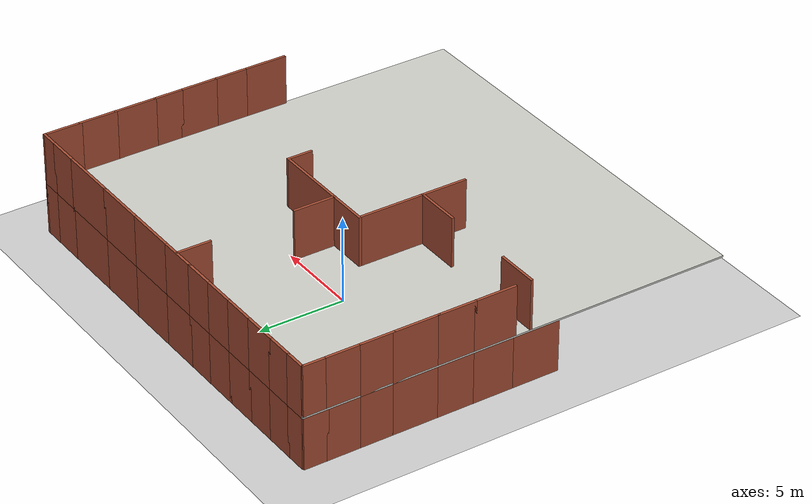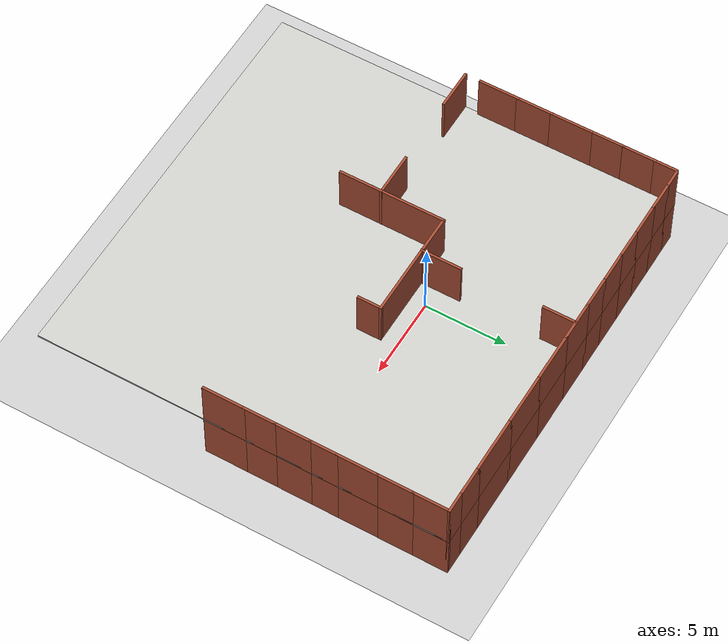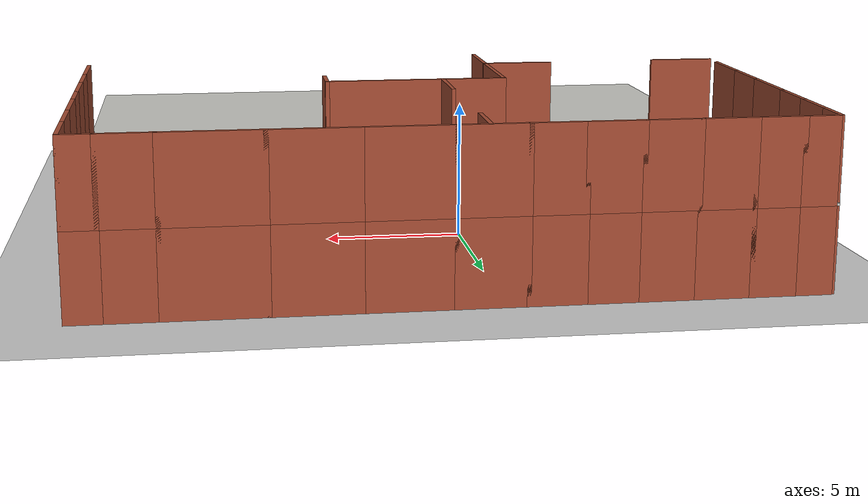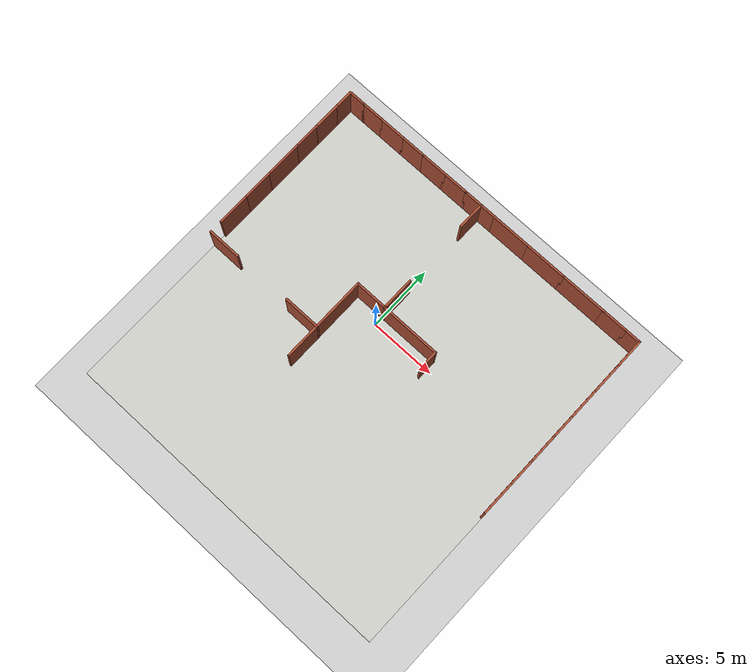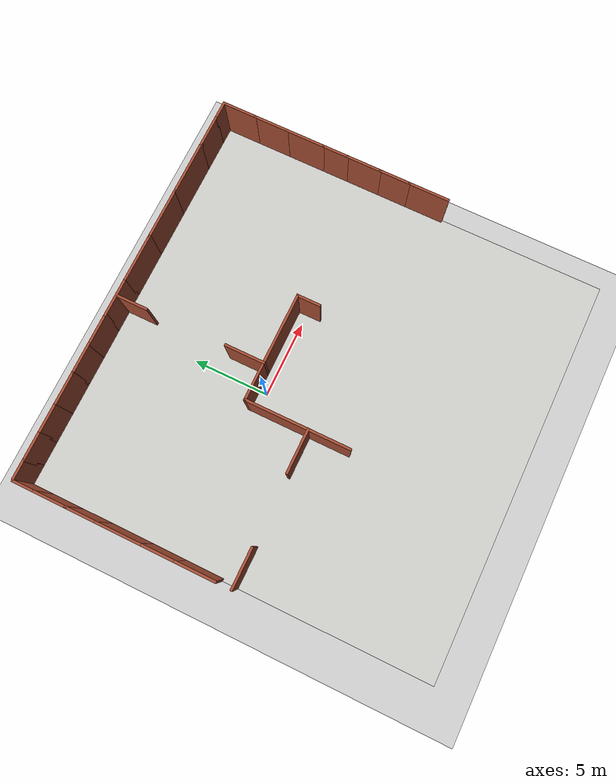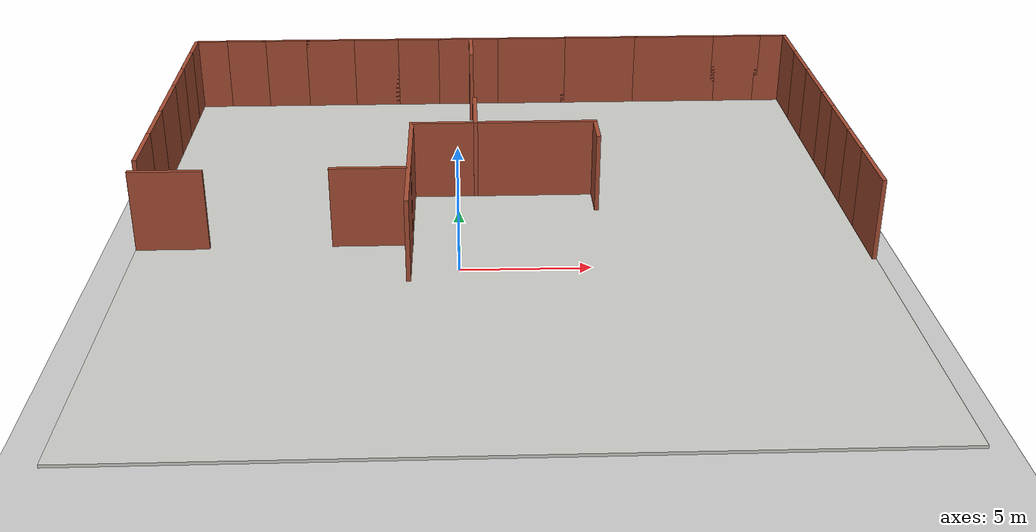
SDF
<sdf version="1.6">
 <world name="default">
  <model name="ground_plane">
   <static>1</static>
   <link name="link">
    <collision name="collision">
     <geometry><plane><normal>0 0 1</normal><size>100 100</size></plane></geometry>
     <surface><friction><ode><mu>100</mu><mu2>50</mu2></ode></friction></surface>
    </collision>
    <visual name="visual">
     <cast_shadows>0</cast_shadows>
     <geometry><plane><normal>0 0 1</normal><size>100 100</size></plane></geometry>
     <material>
      <script><uri>file://media/materials/scripts/gazebo.material</uri><name>Gazebo/Grey</name></script>
     </material>
    </visual>
   </link>
  </model>
  <model name="bigMaze1">
   <pose>1.50484 -3.1802 0 0 -0 0</pose>
   <link name="Floor_1">
    <collision name="Floor_1_Collision">
     <geometry><box><size>24.95 25.0775 0.1</size></box></geometry>
     <pose>0 0 0.05 0 -0 0</pose>
    </collision>
    <visual name="Floor_1_Visual">
     <pose>0 0 0.05 0 -0 0</pose>
     <geometry><box><size>24.95 25.0775 0.1</size></box></geometry>
     <material>
      <script><uri>file://media/materials/scripts/gazebo.material</uri><name>Gazebo/CeilingTiled</name></script>
      <ambient>0.203922 0.396078 0.643137 1</ambient>
     </material>
     <meta><layer>1</layer></meta>
    </visual>
    <pose>-0 0 3 0 -0 0</pose>
   </link>
   <link name="Wall_10">
    <collision name="Wall_10_Collision">
     <geometry><box><size>2 0.15 3</size></box></geometry>
     <pose>0 0 1.5 0 -0 0</pose>
    </collision>
    <visual name="Wall_10_Visual">
     <pose>0 0 1.5 0 -0 0</pose>
     <geometry><box><size>2 0.15 3</size></box></geometry>
     <material>
      <script><uri>file://media/materials/scripts/gazebo.material</uri><name>Gazebo/Bricks</name></script>
      <ambient>1 1 1 1</ambient>
     </material>
     <meta><layer>0</layer></meta>
    </visual>
    <pose>-3.125 12.4638 0 0 -0 0</pose>
   </link>
   <link name="Wall_11">
    <collision name="Wall_11_Collision">
     <geometry><box><size>2.5 0.15 3</size></box></geometry>
     <pose>0 0 1.5 0 -0 0</pose>
    </collision>
    <visual name="Wall_11_Visual">
     <pose>0 0 1.5 0 -0 0</pose>
     <geometry><box><size>2.5 0.15 3</size></box></geometry>
     <material>
      <script><uri>file://media/materials/scripts/gazebo.material</uri><name>Gazebo/Bricks</name></script>
      <ambient>1 1 1 1</ambient>
     </material>
     <meta><layer>0</layer></meta>
    </visual>
    <pose>-1.025 12.4638 0 0 -0 0</pose>
   </link>
   <link name="Wall_12">
    <collision name="Wall_12_Collision">
     <geometry><box><size>3 0.15 3</size></box></geometry>
     <pose>0 0 1.5 0 -0 0</pose>
    </collision>
    <visual name="Wall_12_Visual">
     <pose>0 0 1.5 0 -0 0</pose>
     <geometry><box><size>3 0.15 3</size></box></geometry>
     <material>
      <script><uri>file://media/materials/scripts/gazebo.material</uri><name>Gazebo/Bricks</name></script>
      <ambient>1 1 1 1</ambient>
     </material>
     <meta><layer>0</layer></meta>
    </visual>
    <pose>1.575 12.4638 0 0 -0 0</pose>
   </link>
   <link name="Wall_13">
    <collision name="Wall_13_Collision">
     <geometry><box><size>3.25 0.15 3</size></box></geometry>
     <pose>0 0 1.5 0 -0 0</pose>
    </collision>
    <visual name="Wall_13_Visual">
     <pose>0 0 1.5 0 -0 0</pose>
     <geometry><box><size>3.25 0.15 3</size></box></geometry>
     <material>
      <script><uri>file://media/materials/scripts/gazebo.material</uri><name>Gazebo/Bricks</name></script>
      <ambient>1 1 1 1</ambient>
     </material>
     <meta><layer>0</layer></meta>
    </visual>
    <pose>4.55 12.4638 0 0 -0 0</pose>
   </link>
   <link name="Wall_14">
    <collision name="Wall_14_Collision">
     <geometry><box><size>3.5 0.15 3</size></box></geometry>
     <pose>0 0 1.5 0 -0 0</pose>
    </collision>
    <visual name="Wall_14_Visual">
     <pose>0 0 1.5 0 -0 0</pose>
     <geometry><box><size>3.5 0.15 3</size></box></geometry>
     <material>
      <script><uri>file://media/materials/scripts/gazebo.material</uri><name>Gazebo/Bricks</name></script>
      <ambient>1 1 1 1</ambient>
     </material>
     <meta><layer>0</layer></meta>
    </visual>
    <pose>7.775 12.4638 0 0 -0 0</pose>
   </link>
   <link name="Wall_149">
    <collision name="Wall_149_Collision">
     <geometry><box><size>1.25 0.15 3</size></box></geometry>
     <pose>0 0 1.5 0 -0 0</pose>
    </collision>
    <visual name="Wall_149_Visual">
     <pose>0 0 1.5 0 -0 0</pose>
     <geometry><box><size>1.25 0.15 3</size></box></geometry>
     <material>
      <script><uri>file://media/materials/scripts/gazebo.material</uri><name>Gazebo/Bricks</name></script>
      <ambient>1 1 1 1</ambient>
     </material>
     <meta><layer>1</layer></meta>
    </visual>
    <pose>-11.75 12.4638 3 0 -0 0</pose>
   </link>
   <link name="Wall_15">
    <collision name="Wall_15_Collision">
     <geometry><box><size>2 0.15 3</size></box></geometry>
     <pose>0 0 1.5 0 -0 0</pose>
    </collision>
    <visual name="Wall_15_Visual">
     <pose>0 0 1.5 0 -0 0</pose>
     <geometry><box><size>2 0.15 3</size></box></geometry>
     <material>
      <script><uri>file://media/materials/scripts/gazebo.material</uri><name>Gazebo/Bricks</name></script>
      <ambient>1 1 1 1</ambient>
     </material>
     <meta><layer>0</layer></meta>
    </visual>
    <pose>10.375 12.4638 0 0 -0 0</pose>
   </link>
   <link name="Wall_150">
    <collision name="Wall_150_Collision">
     <geometry><box><size>1.75 0.15 3</size></box></geometry>
     <pose>0 0 1.5 0 -0 0</pose>
    </collision>
    <visual name="Wall_150_Visual">
     <pose>0 0 1.5 0 -0 0</pose>
     <geometry><box><size>1.75 0.15 3</size></box></geometry>
     <material>
      <script><uri>file://media/materials/scripts/gazebo.material</uri><name>Gazebo/Bricks</name></script>
      <ambient>1 1 1 1</ambient>
     </material>
     <meta><layer>1</layer></meta>
    </visual>
    <pose>-10.4 12.4638 3 0 -0 0</pose>
   </link>
   <link name="Wall_151">
    <collision name="Wall_151_Collision">
     <geometry><box><size>2 0.15 3</size></box></geometry>
     <pose>0 0 1.5 0 -0 0</pose>
    </collision>
    <visual name="Wall_151_Visual">
     <pose>0 0 1.5 0 -0 0</pose>
     <geometry><box><size>2 0.15 3</size></box></geometry>
     <material>
      <script><uri>file://media/materials/scripts/gazebo.material</uri><name>Gazebo/Bricks</name></script>
      <ambient>1 1 1 1</ambient>
     </material>
     <meta><layer>1</layer></meta>
    </visual>
    <pose>-8.675 12.4638 3 0 -0 0</pose>
   </link>
   <link name="Wall_152">
    <collision name="Wall_152_Collision">
     <geometry><box><size>2 0.15 3</size></box></geometry>
     <pose>0 0 1.5 0 -0 0</pose>
    </collision>
    <visual name="Wall_152_Visual">
     <pose>0 0 1.5 0 -0 0</pose>
     <geometry><box><size>2 0.15 3</size></box></geometry>
     <material>
      <script><uri>file://media/materials/scripts/gazebo.material</uri><name>Gazebo/Bricks</name></script>
      <ambient>1 1 1 1</ambient>
     </material>
     <meta><layer>1</layer></meta>
    </visual>
    <pose>-6.825 12.4638 3 0 -0 0</pose>
   </link>
   <link name="Wall_153">
    <collision name="Wall_153_Collision">
     <geometry><box><size>2 0.15 3</size></box></geometry>
     <pose>0 0 1.5 0 -0 0</pose>
    </collision>
    <visual name="Wall_153_Visual">
     <pose>0 0 1.5 0 -0 0</pose>
     <geometry><box><size>2 0.15 3</size></box></geometry>
     <material>
      <script><uri>file://media/materials/scripts/gazebo.material</uri><name>Gazebo/Bricks</name></script>
      <ambient>1 1 1 1</ambient>
     </material>
     <meta><layer>1</layer></meta>
    </visual>
    <pose>-4.975 12.4638 3 0 -0 0</pose>
   </link>
   <link name="Wall_154">
    <collision name="Wall_154_Collision">
     <geometry><box><size>2 0.15 3</size></box></geometry>
     <pose>0 0 1.5 0 -0 0</pose>
    </collision>
    <visual name="Wall_154_Visual">
     <pose>0 0 1.5 0 -0 0</pose>
     <geometry><box><size>2 0.15 3</size></box></geometry>
     <material>
      <script><uri>file://media/materials/scripts/gazebo.material</uri><name>Gazebo/Bricks</name></script>
      <ambient>1 1 1 1</ambient>
     </material>
     <meta><layer>1</layer></meta>
    </visual>
    <pose>-3.125 12.4638 3 0 -0 0</pose>
   </link>
   <link name="Wall_155">
    <collision name="Wall_155_Collision">
     <geometry><box><size>2.5 0.15 3</size></box></geometry>
     <pose>0 0 1.5 0 -0 0</pose>
    </collision>
    <visual name="Wall_155_Visual">
     <pose>0 0 1.5 0 -0 0</pose>
     <geometry><box><size>2.5 0.15 3</size></box></geometry>
     <material>
      <script><uri>file://media/materials/scripts/gazebo.material</uri><name>Gazebo/Bricks</name></script>
      <ambient>1 1 1 1</ambient>
     </material>
     <meta><layer>1</layer></meta>
    </visual>
    <pose>-1.025 12.4638 3 0 -0 0</pose>
   </link>
   <link name="Wall_156">
    <collision name="Wall_156_Collision">
     <geometry><box><size>3 0.15 3</size></box></geometry>
     <pose>0 0 1.5 0 -0 0</pose>
    </collision>
    <visual name="Wall_156_Visual">
     <pose>0 0 1.5 0 -0 0</pose>
     <geometry><box><size>3 0.15 3</size></box></geometry>
     <material>
      <script><uri>file://media/materials/scripts/gazebo.material</uri><name>Gazebo/Bricks</name></script>
      <ambient>1 1 1 1</ambient>
     </material>
     <meta><layer>1</layer></meta>
    </visual>
    <pose>1.575 12.4638 3 0 -0 0</pose>
   </link>
   <link name="Wall_157">
    <collision name="Wall_157_Collision">
     <geometry><box><size>3.25 0.15 3</size></box></geometry>
     <pose>0 0 1.5 0 -0 0</pose>
    </collision>
    <visual name="Wall_157_Visual">
     <pose>0 0 1.5 0 -0 0</pose>
     <geometry><box><size>3.25 0.15 3</size></box></geometry>
     <material>
      <script><uri>file://media/materials/scripts/gazebo.material</uri><name>Gazebo/Bricks</name></script>
      <ambient>1 1 1 1</ambient>
     </material>
     <meta><layer>1</layer></meta>
    </visual>
    <pose>4.55 12.4638 3 0 -0 0</pose>
   </link>
   <link name="Wall_158">
    <collision name="Wall_158_Collision">
     <geometry><box><size>3.5 0.15 3</size></box></geometry>
     <pose>0 0 1.5 0 -0 0</pose>
    </collision>
    <visual name="Wall_158_Visual">
     <pose>0 0 1.5 0 -0 0</pose>
     <geometry><box><size>3.5 0.15 3</size></box></geometry>
     <material>
      <script><uri>file://media/materials/scripts/gazebo.material</uri><name>Gazebo/Bricks</name></script>
      <ambient>1 1 1 1</ambient>
     </material>
     <meta><layer>1</layer></meta>
    </visual>
    <pose>7.775 12.4638 3 0 -0 0</pose>
   </link>
   <link name="Wall_159">
    <collision name="Wall_159_Collision">
     <geometry><box><size>2 0.15 3</size></box></geometry>
     <pose>0 0 1.5 0 -0 0</pose>
    </collision>
    <visual name="Wall_159_Visual">
     <pose>0 0 1.5 0 -0 0</pose>
     <geometry><box><size>2 0.15 3</size></box></geometry>
     <material>
      <script><uri>file://media/materials/scripts/gazebo.material</uri><name>Gazebo/Bricks</name></script>
      <ambient>1 1 1 1</ambient>
     </material>
     <meta><layer>1</layer></meta>
    </visual>
    <pose>10.375 12.4638 3 0 -0 0</pose>
   </link>
   <link name="Wall_16">
    <collision name="Wall_16_Collision">
     <geometry><box><size>1.25 0.15 3</size></box></geometry>
     <pose>0 0 1.5 0 -0 0</pose>
    </collision>
    <visual name="Wall_16_Visual">
     <pose>0 0 1.5 0 -0 0</pose>
     <geometry><box><size>1.25 0.15 3</size></box></geometry>
     <material>
      <script><uri>file://media/materials/scripts/gazebo.material</uri><name>Gazebo/Bricks</name></script>
      <ambient>1 1 1 1</ambient>
     </material>
     <meta><layer>0</layer></meta>
    </visual>
    <pose>11.85 12.4638 0 0 -0 0</pose>
   </link>
   <link name="Wall_160">
    <collision name="Wall_160_Collision">
     <geometry><box><size>1.25 0.15 3</size></box></geometry>
     <pose>0 0 1.5 0 -0 0</pose>
    </collision>
    <visual name="Wall_160_Visual">
     <pose>0 0 1.5 0 -0 0</pose>
     <geometry><box><size>1.25 0.15 3</size></box></geometry>
     <material>
      <script><uri>file://media/materials/scripts/gazebo.material</uri><name>Gazebo/Bricks</name></script>
      <ambient>1 1 1 1</ambient>
     </material>
     <meta><layer>1</layer></meta>
    </visual>
    <pose>11.85 12.4638 3 0 -0 0</pose>
   </link>
   <link name="Wall_161">
    <collision name="Wall_161_Collision">
     <geometry><box><size>2.25 0.15 3</size></box></geometry>
     <pose>0 0 1.5 0 -0 0</pose>
    </collision>
    <visual name="Wall_161_Visual">
     <pose>0 0 1.5 0 -0 0</pose>
     <geometry><box><size>2.25 0.15 3</size></box></geometry>
     <material>
      <script><uri>file://media/materials/scripts/gazebo.material</uri><name>Gazebo/Bricks</name></script>
      <ambient>1 1 1 1</ambient>
     </material>
     <meta><layer>1</layer></meta>
    </visual>
    <pose>12.4 11.4138 3 0 -0 -1.5708</pose>
   </link>
   <link name="Wall_162">
    <collision name="Wall_162_Collision">
     <geometry><box><size>2.25 0.15 3</size></box></geometry>
     <pose>0 0 1.5 0 -0 0</pose>
    </collision>
    <visual name="Wall_162_Visual">
     <pose>0 0 1.5 0 -0 0</pose>
     <geometry><box><size>2.25 0.15 3</size></box></geometry>
     <material>
      <script><uri>file://media/materials/scripts/gazebo.material</uri><name>Gazebo/Bricks</name></script>
      <ambient>1 1 1 1</ambient>
     </material>
     <meta><layer>1</layer></meta>
    </visual>
    <pose>12.4 9.31377 3 0 -0 -1.5708</pose>
   </link>
   <link name="Wall_163">
    <collision name="Wall_163_Collision">
     <geometry><box><size>2.5 0.15 3</size></box></geometry>
     <pose>0 0 1.5 0 -0 0</pose>
    </collision>
    <visual name="Wall_163_Visual">
     <pose>0 0 1.5 0 -0 0</pose>
     <geometry><box><size>2.5 0.15 3</size></box></geometry>
     <material>
      <script><uri>file://media/materials/scripts/gazebo.material</uri><name>Gazebo/Bricks</name></script>
      <ambient>1 1 1 1</ambient>
     </material>
     <meta><layer>1</layer></meta>
    </visual>
    <pose>12.4 7.08877 3 0 -0 -1.5708</pose>
   </link>
   <link name="Wall_164">
    <collision name="Wall_164_Collision">
     <geometry><box><size>1.75 0.15 3</size></box></geometry>
     <pose>0 0 1.5 0 -0 0</pose>
    </collision>
    <visual name="Wall_164_Visual">
     <pose>0 0 1.5 0 -0 0</pose>
     <geometry><box><size>1.75 0.15 3</size></box></geometry>
     <material>
      <script><uri>file://media/materials/scripts/gazebo.material</uri><name>Gazebo/Bricks</name></script>
      <ambient>1 1 1 1</ambient>
     </material>
     <meta><layer>1</layer></meta>
    </visual>
    <pose>12.4 5.11376 3 0 -0 -1.5708</pose>
   </link>
   <link name="Wall_165">
    <collision name="Wall_165_Collision">
     <geometry><box><size>2.25 0.15 3</size></box></geometry>
     <pose>0 0 1.5 0 -0 0</pose>
    </collision>
    <visual name="Wall_165_Visual">
     <pose>0 0 1.5 0 -0 0</pose>
     <geometry><box><size>2.25 0.15 3</size></box></geometry>
     <material>
      <script><uri>file://media/materials/scripts/gazebo.material</uri><name>Gazebo/Bricks</name></script>
      <ambient>1 1 1 1</ambient>
     </material>
     <meta><layer>1</layer></meta>
    </visual>
    <pose>12.4 3.26376 3 0 -0 -1.5708</pose>
   </link>
   <link name="Wall_166">
    <collision name="Wall_166_Collision">
     <geometry><box><size>2 0.15 3</size></box></geometry>
     <pose>0 0 1.5 0 -0 0</pose>
    </collision>
    <visual name="Wall_166_Visual">
     <pose>0 0 1.5 0 -0 0</pose>
     <geometry><box><size>2 0.15 3</size></box></geometry>
     <material>
      <script><uri>file://media/materials/scripts/gazebo.material</uri><name>Gazebo/Bricks</name></script>
      <ambient>1 1 1 1</ambient>
     </material>
     <meta><layer>1</layer></meta>
    </visual>
    <pose>12.4 1.28876 3 0 -0 -1.5708</pose>
   </link>
   <link name="Wall_167">
    <collision name="Wall_167_Collision">
     <geometry><box><size>2.60701 0.15 3</size></box></geometry>
     <pose>0 0 1.5 0 -0 0</pose>
    </collision>
    <visual name="Wall_167_Visual">
     <pose>0 0 1.5 0 -0 0</pose>
     <geometry><box><size>2.60701 0.15 3</size></box></geometry>
     <material>
      <script><uri>file://media/materials/scripts/gazebo.material</uri><name>Gazebo/Bricks</name></script>
      <ambient>1 1 1 1</ambient>
     </material>
     <meta><layer>1</layer></meta>
    </visual>
    <pose>12.4 -0.864741 3 0 -0 -1.5708</pose>
   </link>
   <link name="Wall_17">
    <collision name="Wall_17_Collision">
     <geometry><box><size>2.25 0.15 3</size></box></geometry>
     <pose>0 0 1.5 0 -0 0</pose>
    </collision>
    <visual name="Wall_17_Visual">
     <pose>0 0 1.5 0 -0 0</pose>
     <geometry><box><size>2.25 0.15 3</size></box></geometry>
     <material>
      <script><uri>file://media/materials/scripts/gazebo.material</uri><name>Gazebo/Bricks</name></script>
      <ambient>1 1 1 1</ambient>
     </material>
     <meta><layer>0</layer></meta>
    </visual>
    <pose>12.4 11.4138 0 0 -0 -1.5708</pose>
   </link>
   <link name="Wall_18">
    <collision name="Wall_18_Collision">
     <geometry><box><size>2.25 0.15 3</size></box></geometry>
     <pose>0 0 1.5 0 -0 0</pose>
    </collision>
    <visual name="Wall_18_Visual">
     <pose>0 0 1.5 0 -0 0</pose>
     <geometry><box><size>2.25 0.15 3</size></box></geometry>
     <material>
      <script><uri>file://media/materials/scripts/gazebo.material</uri><name>Gazebo/Bricks</name></script>
      <ambient>1 1 1 1</ambient>
     </material>
     <meta><layer>0</layer></meta>
    </visual>
    <pose>12.4 9.31377 0 0 -0 -1.5708</pose>
   </link>
   <link name="Wall_19">
    <collision name="Wall_19_Collision">
     <geometry><box><size>2.5 0.15 3</size></box></geometry>
     <pose>0 0 1.5 0 -0 0</pose>
    </collision>
    <visual name="Wall_19_Visual">
     <pose>0 0 1.5 0 -0 0</pose>
     <geometry><box><size>2.5 0.15 3</size></box></geometry>
     <material>
      <script><uri>file://media/materials/scripts/gazebo.material</uri><name>Gazebo/Bricks</name></script>
      <ambient>1 1 1 1</ambient>
     </material>
     <meta><layer>0</layer></meta>
    </visual>
    <pose>12.4 7.08877 0 0 -0 -1.5708</pose>
   </link>
   <link name="Wall_193">
    <collision name="Wall_193_Collision">
     <geometry><box><size>2.5 0.15 3</size></box></geometry>
     <pose>0 0 1.5 0 -0 0</pose>
    </collision>
    <visual name="Wall_193_Visual">
     <pose>0 0 1.5 0 -0 0</pose>
     <geometry><box><size>2.5 0.15 3</size></box></geometry>
     <material>
      <script><uri>file://media/materials/scripts/gazebo.material</uri><name>Gazebo/Bricks</name></script>
      <ambient>1 1 1 1</ambient>
     </material>
     <meta><layer>1</layer></meta>
    </visual>
    <pose>-12.4 1.48876 3 0 -0 1.5708</pose>
   </link>
   <link name="Wall_194">
    <collision name="Wall_194_Collision">
     <geometry><box><size>2.25 0.15 3</size></box></geometry>
     <pose>0 0 1.5 0 -0 0</pose>
    </collision>
    <visual name="Wall_194_Visual">
     <pose>0 0 1.5 0 -0 0</pose>
     <geometry><box><size>2.25 0.15 3</size></box></geometry>
     <material>
      <script><uri>file://media/materials/scripts/gazebo.material</uri><name>Gazebo/Bricks</name></script>
      <ambient>1 1 1 1</ambient>
     </material>
     <meta><layer>1</layer></meta>
    </visual>
    <pose>-12.4 3.71376 3 0 -0 1.5708</pose>
   </link>
   <link name="Wall_195">
    <collision name="Wall_195_Collision">
     <geometry><box><size>2.75 0.15 3</size></box></geometry>
     <pose>0 0 1.5 0 -0 0</pose>
    </collision>
    <visual name="Wall_195_Visual">
     <pose>0 0 1.5 0 -0 0</pose>
     <geometry><box><size>2.75 0.15 3</size></box></geometry>
     <material>
      <script><uri>file://media/materials/scripts/gazebo.material</uri><name>Gazebo/Bricks</name></script>
      <ambient>1 1 1 1</ambient>
     </material>
     <meta><layer>1</layer></meta>
    </visual>
    <pose>-12.4 6.06377 3 0 -0 1.5708</pose>
   </link>
   <link name="Wall_196">
    <collision name="Wall_196_Collision">
     <geometry><box><size>2 0.15 3</size></box></geometry>
     <pose>0 0 1.5 0 -0 0</pose>
    </collision>
    <visual name="Wall_196_Visual">
     <pose>0 0 1.5 0 -0 0</pose>
     <geometry><box><size>2 0.15 3</size></box></geometry>
     <material>
      <script><uri>file://media/materials/scripts/gazebo.material</uri><name>Gazebo/Bricks</name></script>
      <ambient>1 1 1 1</ambient>
     </material>
     <meta><layer>1</layer></meta>
    </visual>
    <pose>-12.4 8.28876 3 0 -0 1.5708</pose>
   </link>
   <link name="Wall_197">
    <collision name="Wall_197_Collision">
     <geometry><box><size>2.066 0.15 3</size></box></geometry>
     <pose>0 0 1.5 0 -0 0</pose>
    </collision>
    <visual name="Wall_197_Visual">
     <pose>0 0 1.5 0 -0 0</pose>
     <geometry><box><size>2.066 0.15 3</size></box></geometry>
     <material>
      <script><uri>file://media/materials/scripts/gazebo.material</uri><name>Gazebo/Bricks</name></script>
      <ambient>1 1 1 1</ambient>
     </material>
     <meta><layer>1</layer></meta>
    </visual>
    <pose>-12.4 10.1718 3 0 -0 1.5708</pose>
   </link>
   <link name="Wall_198">
    <collision name="Wall_198_Collision">
     <geometry><box><size>1.438 0.15 3</size></box></geometry>
     <pose>0 0 1.5 0 -0 0</pose>
    </collision>
    <visual name="Wall_198_Visual">
     <pose>0 0 1.5 0 -0 0</pose>
     <geometry><box><size>1.438 0.15 3</size></box></geometry>
     <material>
      <script><uri>file://media/materials/scripts/gazebo.material</uri><name>Gazebo/Bricks</name></script>
      <ambient>1 1 1 1</ambient>
     </material>
     <meta><layer>1</layer></meta>
    </visual>
    <pose>-12.4 11.7738 3 0 -0 1.5708</pose>
   </link>
   <link name="Wall_199">
    <collision name="Wall_199_Collision">
     <geometry><box><size>2 0.15 3</size></box></geometry>
     <pose>0 0 1.5 0 -0 0</pose>
    </collision>
    <visual name="Wall_199_Visual">
     <pose>0 0 1.5 0 -0 0</pose>
     <geometry><box><size>2 0.15 3</size></box></geometry>
     <material>
      <script><uri>file://media/materials/scripts/gazebo.material</uri><name>Gazebo/Bricks</name></script>
      <ambient>1 1 1 1</ambient>
     </material>
     <meta><layer>1</layer></meta>
    </visual>
    <pose>-0.917 11.4778 3 0 -0 -1.5708</pose>
   </link>
   <link name="Wall_20">
    <collision name="Wall_20_Collision">
     <geometry><box><size>1.75 0.15 3</size></box></geometry>
     <pose>0 0 1.5 0 -0 0</pose>
    </collision>
    <visual name="Wall_20_Visual">
     <pose>0 0 1.5 0 -0 0</pose>
     <geometry><box><size>1.75 0.15 3</size></box></geometry>
     <material>
      <script><uri>file://media/materials/scripts/gazebo.material</uri><name>Gazebo/Bricks</name></script>
      <ambient>1 1 1 1</ambient>
     </material>
     <meta><layer>0</layer></meta>
    </visual>
    <pose>12.4 5.11376 0 0 -0 -1.5708</pose>
   </link>
   <link name="Wall_200">
    <collision name="Wall_200_Collision">
     <geometry><box><size>2.5 0.15 3</size></box></geometry>
     <pose>0 0 1.5 0 -0 0</pose>
    </collision>
    <visual name="Wall_200_Visual">
     <pose>0 0 1.5 0 -0 0</pose>
     <geometry><box><size>2.5 0.15 3</size></box></geometry>
     <material>
      <script><uri>file://media/materials/scripts/gazebo.material</uri><name>Gazebo/Bricks</name></script>
      <ambient>1 1 1 1</ambient>
     </material>
     <meta><layer>1</layer></meta>
    </visual>
    <pose>-11.213 -0.641235 3 0 -0 0</pose>
   </link>
   <link name="Wall_203">
    <collision name="Wall_203_Collision">
     <geometry><box><size>1.5 0.15 3</size></box></geometry>
     <pose>0 0 1.5 0 -0 0</pose>
    </collision>
    <visual name="Wall_203_Visual">
     <pose>0 0 1.5 0 -0 0</pose>
     <geometry><box><size>1.5 0.15 3</size></box></geometry>
     <material>
      <script><uri>file://media/materials/scripts/gazebo.material</uri><name>Gazebo/Bricks</name></script>
      <ambient>1 1 1 1</ambient>
     </material>
     <meta><layer>1</layer></meta>
    </visual>
    <pose>3.451 2.56777 3 0 -0 1.5708</pose>
   </link>
   <link name="Wall_204">
    <collision name="Wall_204_Collision">
     <geometry><box><size>6.75 0.15 3</size></box></geometry>
     <pose>0 0 1.5 0 -0 0</pose>
    </collision>
    <visual name="Wall_204_Visual">
     <pose>0 0 1.5 0 -0 0</pose>
     <geometry><box><size>6.75 0.15 3</size></box></geometry>
     <material>
      <script><uri>file://media/materials/scripts/gazebo.material</uri><name>Gazebo/Bricks</name></script>
      <ambient>1 1 1 1</ambient>
     </material>
     <meta><layer>1</layer></meta>
    </visual>
    <pose>0.151 3.24276 3 0 -0 3.14159</pose>
   </link>
   <link name="Wall_205">
    <collision name="Wall_205_Collision">
     <geometry><box><size>6.5 0.15 3</size></box></geometry>
     <pose>0 0 1.5 0 -0 0</pose>
    </collision>
    <visual name="Wall_205_Visual">
     <pose>0 0 1.5 0 -0 0</pose>
     <geometry><box><size>6.5 0.15 3</size></box></geometry>
     <material>
      <script><uri>file://media/materials/scripts/gazebo.material</uri><name>Gazebo/Bricks</name></script>
      <ambient>1 1 1 1</ambient>
     </material>
     <meta><layer>1</layer></meta>
    </visual>
    <pose>-3.149 0.067765 3 0 -0 -1.5708</pose>
   </link>
   <link name="Wall_209">
    <collision name="Wall_209_Collision">
     <geometry><box><size>2.75 0.15 3</size></box></geometry>
     <pose>0 0 1.5 0 -0 0</pose>
    </collision>
    <visual name="Wall_209_Visual">
     <pose>0 0 1.5 0 -0 0</pose>
     <geometry><box><size>2.75 0.15 3</size></box></geometry>
     <material>
      <script><uri>file://media/materials/scripts/gazebo.material</uri><name>Gazebo/Bricks</name></script>
      <ambient>1 1 1 1</ambient>
     </material>
     <meta><layer>1</layer></meta>
    </visual>
    <pose>-4.441 -0.580235 3 0 -0 3.14159</pose>
   </link>
   <link name="Wall_21">
    <collision name="Wall_21_Collision">
     <geometry><box><size>2.25 0.15 3</size></box></geometry>
     <pose>0 0 1.5 0 -0 0</pose>
    </collision>
    <visual name="Wall_21_Visual">
     <pose>0 0 1.5 0 -0 0</pose>
     <geometry><box><size>2.25 0.15 3</size></box></geometry>
     <material>
      <script><uri>file://media/materials/scripts/gazebo.material</uri><name>Gazebo/Bricks</name></script>
      <ambient>1 1 1 1</ambient>
     </material>
     <meta><layer>0</layer></meta>
    </visual>
    <pose>12.4 3.26376 0 0 -0 -1.5708</pose>
   </link>
   <link name="Wall_211">
    <collision name="Wall_211_Collision">
     <geometry><box><size>2.5 0.15 3</size></box></geometry>
     <pose>0 0 1.5 0 -0 0</pose>
    </collision>
    <visual name="Wall_211_Visual">
     <pose>0 0 1.5 0 -0 0</pose>
     <geometry><box><size>2.5 0.15 3</size></box></geometry>
     <material>
      <script><uri>file://media/materials/scripts/gazebo.material</uri><name>Gazebo/Bricks</name></script>
      <ambient>1 1 1 1</ambient>
     </material>
     <meta><layer>1</layer></meta>
    </visual>
    <pose>-0.856 4.40977 3 0 -0 1.5708</pose>
   </link>
   <link name="Wall_22">
    <collision name="Wall_22_Collision">
     <geometry><box><size>2 0.15 3</size></box></geometry>
     <pose>0 0 1.5 0 -0 0</pose>
    </collision>
    <visual name="Wall_22_Visual">
     <pose>0 0 1.5 0 -0 0</pose>
     <geometry><box><size>2 0.15 3</size></box></geometry>
     <material>
      <script><uri>file://media/materials/scripts/gazebo.material</uri><name>Gazebo/Bricks</name></script>
      <ambient>1 1 1 1</ambient>
     </material>
     <meta><layer>0</layer></meta>
    </visual>
    <pose>12.4 1.28876 0 0 -0 -1.5708</pose>
   </link>
   <link name="Wall_23">
    <collision name="Wall_23_Collision">
     <geometry><box><size>2.60701 0.15 3</size></box></geometry>
     <pose>0 0 1.5 0 -0 0</pose>
    </collision>
    <visual name="Wall_23_Visual">
     <pose>0 0 1.5 0 -0 0</pose>
     <geometry><box><size>2.60701 0.15 3</size></box></geometry>
     <material>
      <script><uri>file://media/materials/scripts/gazebo.material</uri><name>Gazebo/Bricks</name></script>
      <ambient>1 1 1 1</ambient>
     </material>
     <meta><layer>0</layer></meta>
    </visual>
    <pose>12.4 -0.864741 0 0 -0 -1.5708</pose>
   </link>
   <link name="Wall_5">
    <collision name="Wall_5_Collision">
     <geometry><box><size>1.25 0.15 3</size></box></geometry>
     <pose>0 0 1.5 0 -0 0</pose>
    </collision>
    <visual name="Wall_5_Visual">
     <pose>0 0 1.5 0 -0 0</pose>
     <geometry><box><size>1.25 0.15 3</size></box></geometry>
     <material>
      <script><uri>file://media/materials/scripts/gazebo.material</uri><name>Gazebo/Bricks</name></script>
      <ambient>1 1 1 1</ambient>
     </material>
     <meta><layer>0</layer></meta>
    </visual>
    <pose>-11.75 12.4638 0 0 -0 0</pose>
   </link>
   <link name="Wall_50">
    <collision name="Wall_50_Collision">
     <geometry><box><size>2.75 0.15 3</size></box></geometry>
     <pose>0 0 1.5 0 -0 0</pose>
    </collision>
    <visual name="Wall_50_Visual">
     <pose>0 0 1.5 0 -0 0</pose>
     <geometry><box><size>2.75 0.15 3</size></box></geometry>
     <material>
      <script><uri>file://media/materials/scripts/gazebo.material</uri><name>Gazebo/Bricks</name></script>
      <ambient>1 1 1 1</ambient>
     </material>
     <meta><layer>0</layer></meta>
    </visual>
    <pose>-12.4 -0.986235 0 0 -0 1.5708</pose>
   </link>
   <link name="Wall_51">
    <collision name="Wall_51_Collision">
     <geometry><box><size>2.5 0.15 3</size></box></geometry>
     <pose>0 0 1.5 0 -0 0</pose>
    </collision>
    <visual name="Wall_51_Visual">
     <pose>0 0 1.5 0 -0 0</pose>
     <geometry><box><size>2.5 0.15 3</size></box></geometry>
     <material>
      <script><uri>file://media/materials/scripts/gazebo.material</uri><name>Gazebo/Bricks</name></script>
      <ambient>1 1 1 1</ambient>
     </material>
     <meta><layer>0</layer></meta>
    </visual>
    <pose>-12.4 1.48876 0 0 -0 1.5708</pose>
   </link>
   <link name="Wall_52">
    <collision name="Wall_52_Collision">
     <geometry><box><size>2.25 0.15 3</size></box></geometry>
     <pose>0 0 1.5 0 -0 0</pose>
    </collision>
    <visual name="Wall_52_Visual">
     <pose>0 0 1.5 0 -0 0</pose>
     <geometry><box><size>2.25 0.15 3</size></box></geometry>
     <material>
      <script><uri>file://media/materials/scripts/gazebo.material</uri><name>Gazebo/Bricks</name></script>
      <ambient>1 1 1 1</ambient>
     </material>
     <meta><layer>0</layer></meta>
    </visual>
    <pose>-12.4 3.71376 0 0 -0 1.5708</pose>
   </link>
   <link name="Wall_53">
    <collision name="Wall_53_Collision">
     <geometry><box><size>2.75 0.15 3</size></box></geometry>
     <pose>0 0 1.5 0 -0 0</pose>
    </collision>
    <visual name="Wall_53_Visual">
     <pose>0 0 1.5 0 -0 0</pose>
     <geometry><box><size>2.75 0.15 3</size></box></geometry>
     <material>
      <script><uri>file://media/materials/scripts/gazebo.material</uri><name>Gazebo/Bricks</name></script>
      <ambient>1 1 1 1</ambient>
     </material>
     <meta><layer>0</layer></meta>
    </visual>
    <pose>-12.4 6.06377 0 0 -0 1.5708</pose>
   </link>
   <link name="Wall_54">
    <collision name="Wall_54_Collision">
     <geometry><box><size>2 0.15 3</size></box></geometry>
     <pose>0 0 1.5 0 -0 0</pose>
    </collision>
    <visual name="Wall_54_Visual">
     <pose>0 0 1.5 0 -0 0</pose>
     <geometry><box><size>2 0.15 3</size></box></geometry>
     <material>
      <script><uri>file://media/materials/scripts/gazebo.material</uri><name>Gazebo/Bricks</name></script>
      <ambient>1 1 1 1</ambient>
     </material>
     <meta><layer>0</layer></meta>
    </visual>
    <pose>-12.4 8.28876 0 0 -0 1.5708</pose>
   </link>
   <link name="Wall_55">
    <collision name="Wall_55_Collision">
     <geometry><box><size>2.06542 0.15 3</size></box></geometry>
     <pose>0 0 1.5 0 -0 0</pose>
    </collision>
    <visual name="Wall_55_Visual">
     <pose>0 0 1.5 0 -0 0</pose>
     <geometry><box><size>2.06542 0.15 3</size></box></geometry>
     <material>
      <script><uri>file://media/materials/scripts/gazebo.material</uri><name>Gazebo/Bricks</name></script>
      <ambient>1 1 1 1</ambient>
     </material>
     <meta><layer>0</layer></meta>
    </visual>
    <pose>-12.4 10.1718 0 0 -0 1.5708</pose>
   </link>
   <link name="Wall_56">
    <collision name="Wall_56_Collision">
     <geometry><box><size>1.43816 0.15 3</size></box></geometry>
     <pose>0 0 1.5 0 -0 0</pose>
    </collision>
    <visual name="Wall_56_Visual">
     <pose>0 0 1.5 0 -0 0</pose>
     <geometry><box><size>1.43816 0.15 3</size></box></geometry>
     <material>
      <script><uri>file://media/materials/scripts/gazebo.material</uri><name>Gazebo/Bricks</name></script>
      <ambient>1 1 1 1</ambient>
     </material>
     <meta><layer>0</layer></meta>
    </visual>
    <pose>-12.4 11.7738 0 0 -0 1.5708</pose>
   </link>
   <link name="Wall_58">
    <collision name="Wall_58_Collision">
     <geometry><box><size>2 0.15 3</size></box></geometry>
     <pose>0 0 1.5 0 -0 0</pose>
    </collision>
    <visual name="Wall_58_Visual">
     <pose>0 0 1.5 0 -0 0</pose>
     <geometry><box><size>2 0.15 3</size></box></geometry>
     <material>
      <script><uri>file://media/materials/scripts/gazebo.material</uri><name>Gazebo/Bricks</name></script>
      <ambient>1 1 1 1</ambient>
     </material>
     <meta><layer>0</layer></meta>
    </visual>
    <pose>-0.917 11.4778 0 0 -0 -1.5708</pose>
   </link>
   <link name="Wall_6">
    <collision name="Wall_6_Collision">
     <geometry><box><size>1.75 0.15 3</size></box></geometry>
     <pose>0 0 1.5 0 -0 0</pose>
    </collision>
    <visual name="Wall_6_Visual">
     <pose>0 0 1.5 0 -0 0</pose>
     <geometry><box><size>1.75 0.15 3</size></box></geometry>
     <material>
      <script><uri>file://media/materials/scripts/gazebo.material</uri><name>Gazebo/Bricks</name></script>
      <ambient>1 1 1 1</ambient>
     </material>
     <meta><layer>0</layer></meta>
    </visual>
    <pose>-10.4 12.4638 0 0 -0 0</pose>
   </link>
   <link name="Wall_60">
    <collision name="Wall_60_Collision">
     <geometry><box><size>2.5 0.15 3</size></box></geometry>
     <pose>0 0 1.5 0 -0 0</pose>
    </collision>
    <visual name="Wall_60_Visual">
     <pose>0 0 1.5 0 -0 0</pose>
     <geometry><box><size>2.5 0.15 3</size></box></geometry>
     <material>
      <script><uri>file://media/materials/scripts/gazebo.material</uri><name>Gazebo/Bricks</name></script>
      <ambient>1 1 1 1</ambient>
     </material>
     <meta><layer>0</layer></meta>
    </visual>
    <pose>-11.213 -0.641235 0 0 -0 0</pose>
   </link>
   <link name="Wall_68">
    <collision name="Wall_68_Collision">
     <geometry><box><size>1.5 0.15 3</size></box></geometry>
     <pose>0 0 1.5 0 -0 0</pose>
    </collision>
    <visual name="Wall_68_Visual">
     <pose>0 0 1.5 0 -0 0</pose>
     <geometry><box><size>1.5 0.15 3</size></box></geometry>
     <material>
      <script><uri>file://media/materials/scripts/gazebo.material</uri><name>Gazebo/Bricks</name></script>
      <ambient>1 1 1 1</ambient>
     </material>
     <meta><layer>0</layer></meta>
    </visual>
    <pose>3.451 2.56777 0 0 -0 1.5708</pose>
   </link>
   <link name="Wall_69">
    <collision name="Wall_69_Collision">
     <geometry><box><size>6.75 0.15 3</size></box></geometry>
     <pose>0 0 1.5 0 -0 0</pose>
    </collision>
    <visual name="Wall_69_Visual">
     <pose>0 0 1.5 0 -0 0</pose>
     <geometry><box><size>6.75 0.15 3</size></box></geometry>
     <material>
      <script><uri>file://media/materials/scripts/gazebo.material</uri><name>Gazebo/Bricks</name></script>
      <ambient>1 1 1 1</ambient>
     </material>
     <meta><layer>0</layer></meta>
    </visual>
    <pose>0.151 3.24276 0 0 -0 3.14159</pose>
   </link>
   <link name="Wall_7">
    <collision name="Wall_7_Collision">
     <geometry><box><size>2 0.15 3</size></box></geometry>
     <pose>0 0 1.5 0 -0 0</pose>
    </collision>
    <visual name="Wall_7_Visual">
     <pose>0 0 1.5 0 -0 0</pose>
     <geometry><box><size>2 0.15 3</size></box></geometry>
     <material>
      <script><uri>file://media/materials/scripts/gazebo.material</uri><name>Gazebo/Bricks</name></script>
      <ambient>1 1 1 1</ambient>
     </material>
     <meta><layer>0</layer></meta>
    </visual>
    <pose>-8.675 12.4638 0 0 -0 0</pose>
   </link>
   <link name="Wall_70">
    <collision name="Wall_70_Collision">
     <geometry><box><size>6.5 0.15 3</size></box></geometry>
     <pose>0 0 1.5 0 -0 0</pose>
    </collision>
    <visual name="Wall_70_Visual">
     <pose>0 0 1.5 0 -0 0</pose>
     <geometry><box><size>6.5 0.15 3</size></box></geometry>
     <material>
      <script><uri>file://media/materials/scripts/gazebo.material</uri><name>Gazebo/Bricks</name></script>
      <ambient>1 1 1 1</ambient>
     </material>
     <meta><layer>0</layer></meta>
    </visual>
    <pose>-3.149 0.067765 0 0 -0 -1.5708</pose>
   </link>
   <link name="Wall_77">
    <collision name="Wall_77_Collision">
     <geometry><box><size>2.75 0.15 3</size></box></geometry>
     <pose>0 0 1.5 0 -0 0</pose>
    </collision>
    <visual name="Wall_77_Visual">
     <pose>0 0 1.5 0 -0 0</pose>
     <geometry><box><size>2.75 0.15 3</size></box></geometry>
     <material>
      <script><uri>file://media/materials/scripts/gazebo.material</uri><name>Gazebo/Bricks</name></script>
      <ambient>1 1 1 1</ambient>
     </material>
     <meta><layer>0</layer></meta>
    </visual>
    <pose>-4.441 -0.580235 0 0 -0 3.14159</pose>
   </link>
   <link name="Wall_8">
    <collision name="Wall_8_Collision">
     <geometry><box><size>2 0.15 3</size></box></geometry>
     <pose>0 0 1.5 0 -0 0</pose>
    </collision>
    <visual name="Wall_8_Visual">
     <pose>0 0 1.5 0 -0 0</pose>
     <geometry><box><size>2 0.15 3</size></box></geometry>
     <material>
      <script><uri>file://media/materials/scripts/gazebo.material</uri><name>Gazebo/Bricks</name></script>
      <ambient>1 1 1 1</ambient>
     </material>
     <meta><layer>0</layer></meta>
    </visual>
    <pose>-6.825 12.4638 0 0 -0 0</pose>
   </link>
   <link name="Wall_81">
    <collision name="Wall_81_Collision">
     <geometry><box><size>2.5 0.15 3</size></box></geometry>
     <pose>0 0 1.5 0 -0 0</pose>
    </collision>
    <visual name="Wall_81_Visual">
     <pose>0 0 1.5 0 -0 0</pose>
     <geometry><box><size>2.5 0.15 3</size></box></geometry>
     <material>
      <script><uri>file://media/materials/scripts/gazebo.material</uri><name>Gazebo/Bricks</name></script>
      <ambient>1 1 1 1</ambient>
     </material>
     <meta><layer>0</layer></meta>
    </visual>
    <pose>-0.856 4.40977 0 0 -0 1.5708</pose>
   </link>
   <link name="Wall_9">
    <collision name="Wall_9_Collision">
     <geometry><box><size>2 0.15 3</size></box></geometry>
     <pose>0 0 1.5 0 -0 0</pose>
    </collision>
    <visual name="Wall_9_Visual">
     <pose>0 0 1.5 0 -0 0</pose>
     <geometry><box><size>2 0.15 3</size></box></geometry>
     <material>
      <script><uri>file://media/materials/scripts/gazebo.material</uri><name>Gazebo/Bricks</name></script>
      <ambient>1 1 1 1</ambient>
     </material>
     <meta><layer>0</layer></meta>
    </visual>
    <pose>-4.975 12.4638 0 0 -0 0</pose>
   </link>
   <static>1</static>
  </model>
 </world>
</sdf>
